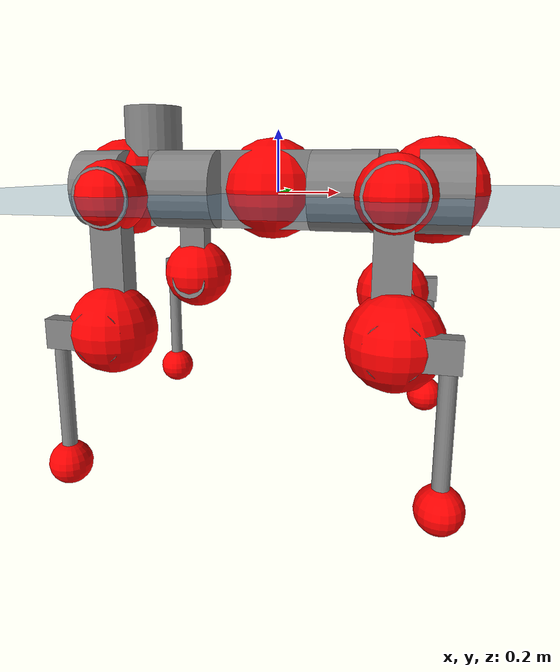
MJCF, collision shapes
<mujoco model="anymal_c">
  <compiler angle="radian" assetdir="assets" balanceinertia="true" inertiafromgeom="false"/>

  <option timestep="0.005" density="1.2" viscosity="2e-05"/>

  <size nkey="1"/>

  <visual>
    <quality shadowsize="8192"/>
    <map shadowclip="0.5"/>
  </visual>

  <default>
    <default class="/">
      <material specular="0" shininess="0.25"/>
      <geom contype="0" conaffinity="0" group="1" solref="-1000 -80"/>
      <site size="0.01 0.005 0.005" group="5"/>
      <general forcelimited="true" forcerange="-80 80" biastype="affine" gainprm="80" biasprm="0 -80 -2"/>
      <default class="anymal_c">
        <joint armature="0.01" damping="0.01" frictionloss="0.1"/>
        <default class="visual">
          <geom type="mesh" group="2"/>
          <default class="visual_zflip"/>
        </default>
        <default class="collision">
          <geom type="cylinder" group="3"/>
          <default class="foot">
            <geom size="0.03 0 0" type="sphere" condim="6" priority="1" friction="0.8 0.02 0.01" solimp="0.015 1 0.03"/>
          </default>
        </default>
      </default>
      <default class="reward_collision_sphere">
        <geom group="5" rgba="1 0 0 1"/>
      </default>
    </default>
  </default>

  <asset>
    <texture type="skybox" colorspace="auto" name="//unnamed_texture_0" builtin="gradient" rgb1="0.95 0.95 0.95" rgb2="0.95 0.95 0.95" width="100" height="600"/>
    <texture type="2d" colorspace="auto" name="texplane" builtin="checker" rgb1="0.345 0.575 0.748" rgb2="0.345 0.575 0.748" markrgb="1 1 1" width="512" height="512"/>
    <texture type="2d" colorspace="linear" name="base" file="base.png"/>
    <texture type="2d" colorspace="linear" name="top_shell" file="top_shell.png"/>
    <texture type="2d" colorspace="linear" name="bottom_shell" file="bottom_shell.png"/>
    <texture type="2d" colorspace="linear" name="remote" file="remote.png"/>
    <texture type="2d" colorspace="linear" name="hatch" file="hatch.png"/>
    <texture type="2d" colorspace="linear" name="handle" file="handle.png"/>
    <texture type="2d" colorspace="linear" name="face" file="face.png"/>
    <texture type="2d" colorspace="linear" name="battery" file="battery.png"/>
    <texture type="2d" colorspace="linear" name="lidar_cage" file="lidar_cage.png"/>
    <texture type="2d" colorspace="linear" name="depth_camera" file="depth_camera.png"/>
    <texture type="2d" colorspace="linear" name="wide_angle_camera" file="wide_angle_camera.png"/>
    <texture type="2d" colorspace="linear" name="lidar" file="lidar.png"/>
    <texture type="2d" colorspace="linear" name="drive" file="drive.png"/>
    <texture type="2d" colorspace="linear" name="hip_l" file="hip_l.png"/>
    <texture type="2d" colorspace="linear" name="shank_l" file="shank_l.png"/>
    <texture type="2d" colorspace="linear" name="foot" file="foot.png"/>
    <texture type="2d" colorspace="linear" name="thigh" file="thigh.png"/>
    <texture type="2d" colorspace="linear" name="shank_r" file="shank_r.png"/>
    <texture type="2d" colorspace="linear" name="hip_r" file="hip_r.png"/>
    <material name="MatPlane" class="/" texture="texplane" texuniform="true" texrepeat="2 2" specular="0.9" shininess="0.5"/>
    <material name="black_plastic" class="/" rgba="0.007 0.007 0.007 1"/>
    <material name="green" class="/" rgba="0.052 0.178 0.033 1"/>
    <material name="red" class="/" rgba="0.178 0.006 0.005 1"/>
    <material name="yellow" class="/" rgba="0.178 0.119 0.006 1"/>
    <material name="lwl" class="/" rgba="0.8 0.8 0.8 1"/>
    <material name="base" class="/" texture="base"/>
    <material name="top_shell" class="/" texture="top_shell"/>
    <material name="bottom_shell" class="/" texture="bottom_shell"/>
    <material name="hip_l" class="/" texture="hip_l"/>
    <material name="thigh" class="/" texture="thigh"/>
    <material name="shank_l" class="/" texture="shank_l"/>
    <material name="foot" class="/" texture="foot"/>
    <material name="hip_r" class="/" texture="hip_r"/>
    <material name="shank" class="/" texture="shank_r"/>
    <material name="hatch" class="/" texture="hatch"/>
    <material name="remote" class="/" texture="remote"/>
    <material name="handle" class="/" texture="handle"/>
    <material name="face" class="/" texture="face"/>
    <material name="depth_camera" class="/" texture="depth_camera"/>
    <material name="wide_angle_camera" class="/" texture="wide_angle_camera"/>
    <material name="battery" class="/" texture="battery"/>
    <material name="lidar_cage" class="/" texture="lidar_cage"/>
    <material name="lidar" class="/" texture="lidar"/>
    <material name="drive" class="/" texture="drive"/>
    <mesh name="base_0" class="/" file="base_0.obj"/>
    <mesh name="base_1" class="/" file="base_1.obj"/>
    <mesh name="base_2" class="/" file="base_2.obj"/>
    <mesh name="base_3" class="/" file="base_3.obj"/>
    <mesh name="base_4" class="/" file="base_4.obj"/>
    <mesh name="base_5" class="/" file="base_5.obj"/>
    <mesh name="top_shell" class="/" file="top_shell.obj"/>
    <mesh name="bottom_shell" class="/" file="bottom_shell.obj"/>
    <mesh name="remote" class="/" file="remote.obj"/>
    <mesh name="handle" class="/" file="handle.obj"/>
    <mesh name="face" class="/" file="face.obj"/>
    <mesh name="wide_angle_camera" class="/" file="wide_angle_camera.obj"/>
    <mesh name="depth_camera" class="/" file="depth_camera.obj"/>
    <mesh name="battery" class="/" file="battery.obj"/>
    <mesh name="lidar_cage" class="/" file="lidar_cage.obj"/>
    <mesh name="lidar" class="/" file="lidar.obj"/>
    <mesh name="drive" class="/" file="drive.obj"/>
    <mesh name="hip_l" class="/" file="hip_l.obj"/>
    <mesh name="thigh" class="/" file="thigh.obj"/>
    <mesh name="shank_l" class="/" file="shank_l.obj"/>
    <mesh name="foot" class="/" file="foot.obj"/>
    <mesh name="hip_r" class="/" file="hip_r.obj"/>
    <mesh name="hatch" class="/" file="hatch.obj"/>
    <mesh name="shank_r" class="/" file="shank_r.obj"/>
  </asset>

  <worldbody>
    <geom name="floor" class="/" size="100 100 0.125" type="plane" group="0" material="MatPlane"/>
    <light name="toplight_shadow" class="/" pos="0 0 5" dir="0.0990148 0.0990148 -0.990148" type="directional" ambient="0.04 0.04 0.04" diffuse="0.55 0.55 0.55" specular="0.12 0.12 0.12"/>
    <light name="toplight_fill" class="/" pos="0 0 5" dir="0.0990148 0.0990148 -0.990148" type="directional" castshadow="false" ambient="0.04 0.04 0.04" diffuse="0.3 0.3 0.3" specular="0.08 0.08 0.08"/>
    <body name="trunk" childclass="anymal_c" pos="-0.0184292 0.00413848 0.010721" quat="0.999964 0.000656297 0.000946725 0.00840727">
      <inertial pos="0.0206135 -0.0103998 0.0762157" quat="0.500183 0.478486 0.523157 0.497167" mass="55.2212" diaginertia="1.1699 5.56745 0.910266"/>
      <joint name="//unnamed_joint_0" type="free" armature="0" damping="0" frictionloss="0"/>
      <geom name="//unnamed_geom_1" class="visual" material="green" mesh="base_0"/>
      <geom name="//unnamed_geom_2" class="visual" material="yellow" mesh="base_1"/>
      <geom name="//unnamed_geom_3" class="visual" material="red" mesh="base_2"/>
      <geom name="//unnamed_geom_4" class="visual" material="black_plastic" mesh="base_3"/>
      <geom name="//unnamed_geom_5" class="visual" material="lwl" mesh="base_4"/>
      <geom name="//unnamed_geom_6" class="visual" material="base" mesh="base_5"/>
      <geom name="trunk_1" class="collision" size="0.401823 0.0969918 0.124704" type="box"/>
      <geom name="trunk_2" class="collision" size="0.124704 0.100456" pos="0.252333 0.111688 0" quat="0.707107 0 0.707107 0"/>
      <geom name="trunk_3" class="collision" size="0.124704 0.100456" pos="-0.252333 0.111688 0" quat="0.707107 0 0.707107 0"/>
      <geom name="trunk_4" class="collision" size="0.124704 0.100456" pos="0.252333 -0.111688 0" quat="0.707107 0 0.707107 0"/>
      <geom name="trunk_5" class="collision" size="0.124704 0.100456" pos="-0.252333 -0.111688 0" quat="0.707107 0 0.707107 0"/>
      <geom name="//unnamed_geom_12" class="visual" material="top_shell" mesh="top_shell"/>
      <geom name="//unnamed_geom_13" class="visual" material="bottom_shell" mesh="bottom_shell"/>
      <geom name="//unnamed_geom_14" class="visual" material="remote" mesh="remote"/>
      <geom name="//unnamed_geom_15" class="visual" material="handle" mesh="handle"/>
      <geom name="//unnamed_geom_16" class="visual" pos="0.480883 0 0" quat="1 0 0 0" material="face" mesh="face"/>
      <geom name="trunk_6" class="collision" size="0.0762079 0.0969918 0.124704" pos="0.544692 0 0" type="box"/>
      <geom name="//unnamed_geom_18" class="collision" size="0.124704 0.0762079" pos="0.544692 0.111688 0" quat="0.707107 0 0.707107 0"/>
      <geom name="//unnamed_geom_19" class="collision" size="0.124704 0.0762079" pos="0.544692 -0.111688 0" quat="0.707107 0 0.707107 0"/>
      <geom name="//unnamed_geom_20" class="visual" pos="0.535595 0 -0.0427432" quat="0.965926 0 0.258819 0" material="depth_camera" mesh="depth_camera"/>
      <geom name="//unnamed_geom_21" class="visual" pos="0.595158 0 0.0209744" material="wide_angle_camera" mesh="wide_angle_camera"/>
      <geom name="//unnamed_geom_22" class="visual_zflip" pos="-0.480883 0 0" quat="0 0 0 1" material="face" mesh="face"/>
      <geom name="trunk_7" class="collision" size="0.0762079 0.0969918 0.124704" pos="-0.544692 0 0" quat="0 0 0 1" type="box"/>
      <geom name="//unnamed_geom_24" class="collision" size="0.124704 0.0762079" pos="-0.544692 -0.111688 0" quat="0 -0.707107 0 0.707107"/>
      <geom name="//unnamed_geom_25" class="collision" size="0.124704 0.0762079" pos="-0.544692 0.111688 0" quat="0 -0.707107 0 0.707107"/>
      <geom name="//unnamed_geom_26" class="visual" pos="-0.535595 0 -0.0427432" quat="0 -0.258819 0 0.965926" material="depth_camera" mesh="depth_camera"/>
      <geom name="//unnamed_geom_27" class="visual_zflip" pos="-0.595158 0 0.0209744" quat="0 0 0 1" material="wide_angle_camera" mesh="wide_angle_camera"/>
      <geom name="//unnamed_geom_28" class="visual" material="battery" mesh="battery"/>
      <geom name="//unnamed_geom_29" class="visual" pos="0 0.127718 0.0388707" quat="0.683013 -0.183013 0.183013 0.683013" material="depth_camera" mesh="depth_camera"/>
      <geom name="//unnamed_geom_30" class="visual" pos="0 -0.127718 0.0388707" quat="0.683013 0.183013 0.183013 -0.683013" material="depth_camera" mesh="depth_camera"/>
      <geom name="//unnamed_geom_31" class="visual" pos="-0.422296 0 0.102981" quat="1 0 0 0" material="lidar_cage" mesh="lidar_cage"/>
      <geom name="trunk_8" class="collision" size="0.0969918 0.0831359" pos="-0.422296 0 0.187047"/>
      <geom name="//unnamed_geom_33" class="visual" pos="-0.422296 0.000171053 0.199236" quat="0.707107 0 0 -0.707107" material="lidar" mesh="lidar"/>
      <geom name="//unnamed_geom_34" class="visual" pos="0.34793 0.165867 3.3542e-09" quat="0.258819 0.965926 0 0" material="drive" mesh="drive"/>
      <geom name="//unnamed_geom_35" class="visual" pos="0.34793 -0.165867 -3.3542e-09" quat="0.258819 -0.965926 0 0" material="drive" mesh="drive"/>
      <geom name="//unnamed_geom_36" class="visual" pos="-0.34793 0.165867 -3.3542e-09" quat="0 0 0.965926 -0.258819" material="drive" mesh="drive"/>
      <geom name="//unnamed_geom_37" class="visual" pos="-0.34793 -0.165867 3.3542e-09" quat="0 0 -0.965926 -0.258819" material="drive" mesh="drive"/>
      <geom name="//unnamed_geom_38" class="visual" pos="0.134578 0 0.10228" quat="1 0 0 0" material="hatch" mesh="hatch"/>
      <geom name="//unnamed_geom_39" class="reward_collision_sphere" size="0.166272"/>
      <geom name="//unnamed_geom_40" class="reward_collision_sphere" size="0.166272" pos="0.522069 0 0"/>
      <geom name="//unnamed_geom_41" class="reward_collision_sphere" size="0.166272" pos="-0.522069 0 0"/>
      <site name="imu" pos="0.310691 -0.0448994 -0.0177842" size="0.013856"/>
      <camera name="track" pos="0 -3.19108 0" quat="0.707107 0.707107 0 0" mode="trackcom"/>
      <camera name="ego_camera" pos="0.522069 0 -0.0560439" quat="-0.5 -0.5 0.5 0.5"/>
      <body name="LF_HIP" pos="0.34745 0.17397 -0.00994307" quat="0.254846 0.966976 -0.00324516 -0.000241402">
        <inertial pos="0.0587518 -0.0104391 -0.00613749" quat="-0.118368 0.725583 -0.129257 0.66544" mass="7.65479" diaginertia="0.00863239 0.039857 0.0175692"/>
        <joint name="LF_HAA" pos="0 0 0" axis="0.995866 0.0841125 0.034285" stiffness="0.0470747" range="-1.07864 0.590646" armature="0.0146271" damping="0" frictionloss="0.130599"/>
        <geom name="//unnamed_geom_42" class="visual" pos="0 0.000197312 -3.24084e-05" quat="0.258819 -0.965926 0 0" material="hip_l" mesh="hip_l"/>
        <geom name="//unnamed_geom_43" class="visual" pos="0.0694932 -0.0898692 -0.0504478" quat="0.183013 -0.683013 0.683013 0.183013" material="drive" mesh="drive"/>
        <geom name="//unnamed_geom_44" class="collision" size="0.0692799 0.0969918" pos="0.0694932 -0.0190824 -0.00967458" quat="-0.353553 -0.612372 0.612372 -0.353553"/>
        <body name="LF_THIGH" pos="0.058434 -0.120282 -0.0705368" quat="0.175984 -0.68197 0.68613 0.18213">
          <inertial pos="0.0220144 0.0128772 -0.327446" quat="0.993068 -0.00458799 -0.0808253 0.0852153" mass="10.0593" diaginertia="0.0644146 0.343853 0.0202802"/>
          <joint name="LF_HFE" pos="0 0 0" axis="0.999012 0.00664692 0.0439317" stiffness="0.0935898" range="-3.34826 3.17097" armature="0.0211263" damping="0" frictionloss="0.201012"/>
          <geom name="//unnamed_geom_45" class="visual" pos="-0.00866254 -1.36501e-05 0" quat="0.707107 0 0 -0.707107" material="thigh" mesh="thigh"/>
          <geom name="//unnamed_geom_46" class="collision" size="0.0900638 0.0554239" pos="0.0464061 0 0" quat="0.5 0.5 -0.5 -0.5"/>
          <geom name="//unnamed_geom_47" class="collision" size="0.0519599 0.0415679 0.195804" pos="0.0348046 0 -0.197995" quat="0.707107 0 0 -0.707107" type="box"/>
          <geom name="//unnamed_geom_48" class="visual" pos="0.116363 0 -0.399313" quat="1 0 0 0" material="drive" mesh="drive"/>
          <geom name="//unnamed_geom_49" class="collision" size="0.0692799 0.0969918" pos="0.0351526 0 -0.399313" quat="0.707107 0 0.707107 0"/>
          <geom name="//unnamed_geom_50" class="reward_collision_sphere" size="0.110848" pos="0.0290038 0 0"/>
          <body name="LF_SHANK" pos="0.111206 0.016925 -0.397379" quat="0.99998 -0.0026939 -0.00422229 0.00382717">
            <inertial pos="0.0214934 -0.0959427 -0.126194" quat="0.996987 -0.0771841 -0.00742248 0.0019825" mass="1.4755" diaginertia="0.0188371 0.0613782 0.00414444"/>
            <joint name="LF_KFE" pos="0 0 0" axis="0.998975 0.0423651 -0.015957" range="-2.80416 3.06346" armature="0.00661734" damping="0.092241" frictionloss="0.0597445"/>
            <geom name="//unnamed_geom_51" class="visual" pos="-0.00282466 -0.0150613 0" quat="0.707107 0 0 -0.707107" material="shank_l" mesh="shank_l"/>
            <geom name="LF_kfe_act" class="collision" size="0.0831359 0.027712" pos="0.0232031 0 0" quat="0.5 0.5 -0.5 -0.5"/>
            <geom name="//unnamed_geom_53" class="collision" size="0.0796705 0.0467639 0.0263264" pos="0.0232031 -0.0917421 0" quat="0.5 0.5 -0.5 -0.5" type="box"/>
            <geom name="//unnamed_geom_54" class="visual" pos="0.0151407 -0.145182 -0.473529" quat="0.382683 0 0 -0.92388" material="foot" mesh="foot"/>
            <geom name="LF_calf" class="collision" size="0.024248 0.195718" pos="0.01514 -0.140328 -0.236764" quat="0.707107 0 0 -0.707107"/>
            <geom name="LF_foot" class="foot" size="0.034492" pos="0.01514 -0.140328 -0.442004" quat="0.707107 0 0 -0.707107"/>
            <geom name="//unnamed_geom_57" class="reward_collision_sphere" size="0.13856" pos="-0.0580077 0 0"/>
            <geom name="//unnamed_geom_58" class="reward_collision_sphere" size="0.0692799" pos="0.01514 -0.140328 -0.442004"/>
            <site name="LF_foot" class="foot" pos="0.01514 -0.140328 -0.442004" quat="0.707107 0 0 -0.707107" size="0.013856"/>
          </body>
        </body>
      </body>
      <body name="RF_HIP" pos="0.342533 -0.174075 0.0170816" quat="0.25998 -0.965587 -0.0061872 0.00358398">
        <inertial pos="0.0545526 0.0405185 -0.010533" quat="0.112278 0.714413 0.0679289 0.687308" mass="7.39084" diaginertia="0.0166505 0.0579723 0.0236847"/>
        <joint name="RF_HAA" pos="0 0 0" axis="0.998347 0.0374729 0.0435697" stiffness="0.0375352" range="-0.66778 0.705208" armature="0.00857498" damping="0" frictionloss="0.246485"/>
        <geom name="//unnamed_geom_59" class="visual" pos="0 -0.000197311 -3.24083e-05" quat="0.258819 0.965926 0 0" material="hip_r" mesh="hip_r"/>
        <geom name="//unnamed_geom_60" class="visual" pos="0.0694932 0.0898692 -0.0504478" quat="0.183013 0.683013 0.683013 -0.183013" material="drive" mesh="drive"/>
        <geom name="//unnamed_geom_61" class="collision" size="0.0692799 0.0969918" pos="0.0694932 0.0190824 -0.00967458" quat="-0.353553 0.612372 0.612372 0.353553"/>
        <body name="RF_THIGH" pos="0.0682723 0.134023 -0.0590921" quat="0.181675 0.682752 0.683454 -0.183669">
          <inertial pos="0.0239719 0.0144365 -0.339581" quat="0.98775 0.0432218 -0.0732235 0.130843" mass="7.82001" diaginertia="0.0763715 0.389223 0.0207454"/>
          <joint name="RF_HFE" pos="0 0 0" axis="0.999965 0.00129807 -0.00831033" stiffness="0.0600647" range="-3.0342 2.84088" armature="0.0140042" damping="0.0415606" frictionloss="0.0671247"/>
          <geom name="//unnamed_geom_62" class="visual" pos="-0.00866254 -1.36501e-05 0" quat="0.707107 0 0 -0.707107" material="thigh" mesh="thigh"/>
          <geom name="//unnamed_geom_63" class="collision" size="0.0900638 0.0554239" pos="0.0464061 0 0" quat="0.5 0.5 0.5 0.5"/>
          <geom name="//unnamed_geom_64" class="collision" size="0.0519599 0.0415679 0.195804" pos="0.0348046 0 -0.197995" quat="0.707107 0 0 0.707107" type="box"/>
          <geom name="//unnamed_geom_65" class="visual" pos="0.116363 0 -0.399313" quat="1 0 0 0" material="drive" mesh="drive"/>
          <geom name="//unnamed_geom_66" class="collision" size="0.0692799 0.0969918" pos="0.0351526 0 -0.399313" quat="0.707107 0 0.707107 0"/>
          <geom name="//unnamed_geom_67" class="reward_collision_sphere" size="0.110848" pos="0.0290038 0 0"/>
          <body name="RF_SHANK" pos="0.11621 0.0148616 -0.390602" quat="1 6.48345e-05 4.89926e-05 2.09725e-05">
            <inertial pos="0.00812453 0.0937829 -0.115574" quat="0.99191 0.0891183 0.0682847 0.0592365" mass="1.62805" diaginertia="0.0214577 0.0943721 0.00706481"/>
            <joint name="RF_KFE" pos="0 0 0" axis="0.9962 0.0213346 0.0844388" stiffness="0.0791144" range="-3.21553 2.86698" armature="0.0202774" damping="0" frictionloss="0.206203"/>
            <geom name="//unnamed_geom_68" class="visual" pos="-0.00282465 0.0150612 0" quat="0.707107 0 0 0.707107" material="shank" mesh="shank_r"/>
            <geom name="RF_kfe_act" class="collision" size="0.0831359 0.027712" pos="0.0232031 0 0" quat="0.5 0.5 0.5 0.5"/>
            <geom name="//unnamed_geom_70" class="collision" size="0.0796705 0.0467639 0.0263264" pos="0.0232031 0.0917421 0" quat="0.5 0.5 0.5 0.5" type="box"/>
            <geom name="//unnamed_geom_71" class="visual" pos="0.0151393 0.145182 -0.473529" quat="0.382683 0 0 0.92388" material="foot" mesh="foot"/>
            <geom name="RF_calf" class="collision" size="0.024248 0.195718" pos="0.01514 0.140328 -0.236764" quat="0.707107 0 0 0.707107"/>
            <geom name="RF_foot" class="foot" size="0.0543494" pos="0.01514 0.140328 -0.442004" quat="0.707107 0 0 0.707107"/>
            <geom name="//unnamed_geom_74" class="reward_collision_sphere" size="0.13856" pos="-0.0580077 0 0"/>
            <geom name="//unnamed_geom_75" class="reward_collision_sphere" size="0.0692799" pos="0.01514 0.140328 -0.442004"/>
            <site name="RF_foot" class="foot" pos="0.01514 0.140328 -0.442004" quat="0.707107 0 0 0.707107" size="0.013856"/>
          </body>
        </body>
      </body>
      <body name="LH_HIP" pos="-0.345704 0.164002 0.0141275" quat="0.000487927 -0.000322506 0.966252 -0.257597">
        <inertial pos="0.0564337 0.00692451 0.00242268" quat="0.178972 0.688461 0.0458498 0.701348" mass="5.30448" diaginertia="0.0106157 0.0482073 0.0128638"/>
        <joint name="LH_HAA" pos="0 0 0" axis="0.999914 -0.00142136 0.0129998" range="-0.380043 0.964442" armature="0.0235723" damping="0.0434097" frictionloss="0.0256606"/>
        <geom name="//unnamed_geom_76" class="visual" pos="0 -0.000197311 -3.24083e-05" quat="-0.258819 -0.965926 0 0" material="hip_r" mesh="hip_r"/>
        <geom name="//unnamed_geom_77" class="visual" pos="0.0694932 0.0898692 -0.0504478" quat="0.183013 0.683013 0.683013 -0.183013" material="drive" mesh="drive"/>
        <geom name="//unnamed_geom_78" class="collision" size="0.0692799 0.0969918" pos="0.0694932 0.0190824 -0.00967458" quat="-0.353553 0.612372 0.612372 0.353553"/>
        <body name="LH_THIGH" pos="0.066959 0.131717 -0.0749644" quat="0.182994 0.681541 0.684836 -0.181701">
          <inertial pos="0.035459 0.000979607 -0.350357" quat="0.986605 -0.0150145 -0.118819 0.110756" mass="5.74835" diaginertia="0.0548261 0.257552 0.0170644"/>
          <joint name="LH_HFE" pos="0 0 0" axis="0.998091 -0.0553361 0.0274231" range="-3.21852 3.05738" armature="0.00464633" damping="0.0747198" frictionloss="0.138112"/>
          <geom name="//unnamed_geom_79" class="visual" pos="-0.00866254 -1.36501e-05 0" quat="0.707107 0 0 -0.707107" material="thigh" mesh="thigh"/>
          <geom name="//unnamed_geom_80" class="collision" size="0.0900638 0.0554239" pos="0.0464061 0 0" quat="0.5 0.5 -0.5 -0.5"/>
          <geom name="//unnamed_geom_81" class="collision" size="0.0519599 0.0415679 0.195804" pos="0.0348046 0 -0.197995" quat="0.707107 0 0 -0.707107" type="box"/>
          <geom name="//unnamed_geom_82" class="visual" pos="0.116363 0 -0.399313" quat="1 0 0 0" material="drive" mesh="drive"/>
          <geom name="//unnamed_geom_83" class="collision" size="0.0692799 0.0969918" pos="0.0351526 0 -0.399313" quat="0.707107 0 0.707107 0"/>
          <geom name="//unnamed_geom_84" class="reward_collision_sphere" size="0.110848" pos="0.0290038 0 0"/>
          <body name="LH_SHANK" pos="0.114563 -0.0002194 -0.382275" quat="0.999994 -0.000227537 0.000910363 0.0032334">
            <inertial pos="0.0153898 0.0797393 -0.117125" quat="0.985335 0.163758 0.0248238 0.0410213" mass="1.38598" diaginertia="0.0217794 0.0809533 0.00659834"/>
            <joint name="LH_KFE" pos="0 0 0" axis="0.999533 0.0015324 -0.0305316" stiffness="0.0925744" range="-3.12838 2.93205" armature="0.00626466" damping="0.0683075" frictionloss="0.0159435"/>
            <geom name="//unnamed_geom_85" class="visual" pos="-0.00282465 0.0150612 0" quat="-0.707107 0 0 -0.707107" material="shank" mesh="shank_r"/>
            <geom name="LH_kfe_act" class="collision" size="0.0831359 0.027712" pos="0.0232031 0 0" quat="0.5 0.5 -0.5 -0.5"/>
            <geom name="//unnamed_geom_87" class="collision" size="0.0796705 0.0467639 0.0263264" pos="0.0232031 0.0917421 0" quat="0.5 0.5 -0.5 -0.5" type="box"/>
            <geom name="//unnamed_geom_88" class="visual" pos="0.0151393 0.145182 -0.473529" quat="-0.382683 0 0 -0.92388" material="foot" mesh="foot"/>
            <geom name="LH_calf" class="collision" size="0.024248 0.195718" pos="0.01514 0.140328 -0.236764" quat="0.707107 0 0 -0.707107"/>
            <geom name="LH_foot" class="foot" size="0.0588417" pos="0.01514 0.140328 -0.442004" quat="0.707107 0 0 -0.707107"/>
            <geom name="//unnamed_geom_91" class="reward_collision_sphere" size="0.13856" pos="-0.0580077 0 0"/>
            <geom name="//unnamed_geom_92" class="reward_collision_sphere" size="0.0692799" pos="0.01514 0.140328 -0.442004"/>
            <site name="LH_foot" class="foot" pos="0.01514 0.140328 -0.442004" quat="0.707107 0 0 -0.707107" size="0.013856"/>
          </body>
        </body>
      </body>
      <body name="RH_HIP" pos="-0.35689 -0.154695 0.00605886" quat="0.00124838 -0.004728 -0.964018 -0.265791">
        <inertial pos="0.047949 -0.0384865 0.00605985" quat="-0.109721 0.668147 -0.169221 0.716174" mass="7.25524" diaginertia="0.0125203 0.0521061 0.0184913"/>
        <joint name="RH_HAA" pos="0 0 0" axis="0.995882 -0.085658 -0.0296984" range="-0.902072 0.373882" armature="0.0218565" damping="0.0390243" frictionloss="0.0938822"/>
        <geom name="//unnamed_geom_93" class="visual" pos="0 0.000197312 -3.24084e-05" quat="-0.258819 0.965926 0 0" material="hip_l" mesh="hip_l"/>
        <geom name="//unnamed_geom_94" class="visual" pos="0.0694932 -0.0898692 -0.0504478" quat="-0.183013 0.683013 -0.683013 -0.183013" material="drive" mesh="drive"/>
        <geom name="//unnamed_geom_95" class="collision" size="0.0692799 0.0969918" pos="0.0694932 -0.0190824 -0.00967458" quat="0.353553 0.612372 -0.612372 0.353553"/>
        <body name="RH_THIGH" pos="0.0771766 -0.111622 -0.0408506" quat="-0.183116 0.683039 -0.682999 -0.182864">
          <inertial pos="0.0410602 -0.001797 -0.344294" quat="0.992627 0.00278201 -0.0789495 0.0919233" mass="9.67139" diaginertia="0.0676923 0.256363 0.0219755"/>
          <joint name="RH_HFE" pos="0 0 0" axis="0.999459 0.0138189 -0.0298352" range="-3.15406 2.82523" armature="0.0171078" damping="0.00153209" frictionloss="0.0934527"/>
          <geom name="//unnamed_geom_96" class="visual" pos="-0.00866254 -1.36501e-05 0" quat="0.707107 0 0 -0.707107" material="thigh" mesh="thigh"/>
          <geom name="//unnamed_geom_97" class="collision" size="0.0900638 0.0554239" pos="0.0464061 0 0" quat="0.5 0.5 0.5 0.5"/>
          <geom name="//unnamed_geom_98" class="collision" size="0.0519599 0.0415679 0.195804" pos="0.0348046 0 -0.197995" quat="0.707107 0 0 0.707107" type="box"/>
          <geom name="//unnamed_geom_99" class="visual" pos="0.116363 0 -0.399313" quat="1 0 0 0" material="drive" mesh="drive"/>
          <geom name="//unnamed_geom_100" class="collision" size="0.0692799 0.0969918" pos="0.0351526 0 -0.399313" quat="0.707107 0 0.707107 0"/>
          <geom name="//unnamed_geom_101" class="reward_collision_sphere" size="0.110848" pos="0.0290038 0 0"/>
          <body name="RH_SHANK" pos="0.110671 -0.00306898 -0.410196" quat="0.999998 -0.000760291 -9.21223e-05 -0.00191452">
            <inertial pos="0.0202491 -0.102963 -0.110401" quat="0.997896 -0.0583944 0.00455893 -0.0277889" mass="1.67034" diaginertia="0.0191153 0.0933783 0.00497007"/>
            <joint name="RH_KFE" pos="0 0 0" axis="0.996585 -0.0608036 -0.0558696" stiffness="0.00999062" range="-2.95781 3.18324" armature="0.0190931" damping="0" frictionloss="0.192521"/>
            <geom name="//unnamed_geom_102" class="visual" pos="-0.00282466 -0.0150613 0" quat="0.707107 0 0 -0.707107" material="shank_l" mesh="shank_l"/>
            <geom name="RH_kfe_act" class="collision" size="0.0831359 0.027712" pos="0.0232031 0 0" quat="0.5 0.5 0.5 0.5"/>
            <geom name="//unnamed_geom_104" class="collision" size="0.0796705 0.0467639 0.0263264" pos="0.0232031 -0.0917421 0" quat="0.5 0.5 0.5 0.5" type="box"/>
            <geom name="//unnamed_geom_105" class="visual" pos="0.0151407 -0.145182 -0.473529" quat="0.382683 0 0 -0.92388" material="foot" mesh="foot"/>
            <geom name="RH_calf" class="collision" size="0.024248 0.195718" pos="0.01514 -0.140328 -0.236764" quat="0.707107 0 0 0.707107"/>
            <geom name="RH_foot" class="foot" size="0.0659248" pos="0.01514 -0.140328 -0.442004" quat="0.707107 0 0 0.707107"/>
            <geom name="//unnamed_geom_108" class="reward_collision_sphere" size="0.13856" pos="-0.0580077 0 0"/>
            <geom name="//unnamed_geom_109" class="reward_collision_sphere" size="0.0692799" pos="0.01514 -0.140328 -0.442004"/>
            <site name="RH_foot" class="foot" pos="0.01514 -0.140328 -0.442004" quat="0.707107 0 0 0.707107" size="0.013856"/>
          </body>
        </body>
      </body>
    </body>
  </worldbody>

  <contact>
    <pair class="/" geom1="floor" geom2="LF_foot" name="//unnamed_contact_0"/>
    <pair class="/" geom1="floor" geom2="RF_foot" name="//unnamed_contact_1"/>
    <pair class="/" geom1="floor" geom2="LH_foot" name="//unnamed_contact_2"/>
    <pair class="/" geom1="floor" geom2="RH_foot" name="//unnamed_contact_3"/>
  </contact>

  <actuator>
    <general name="LF_HAA" class="/" joint="LF_HAA" forcerange="-113.075 113.075" gainprm="77.738" biasprm="0 -77.738 -3.70086"/>
    <general name="LF_HFE" class="/" joint="LF_HFE" forcerange="-158.499 158.499" gainprm="77.738" biasprm="0 -77.738 -3.70086"/>
    <general name="LF_KFE" class="/" joint="LF_KFE" forcerange="-132.966 132.966" gainprm="77.738" biasprm="0 -77.738 -3.70086"/>
    <general name="RF_HAA" class="/" joint="RF_HAA" forcerange="-125.106 125.106" gainprm="77.738" biasprm="0 -77.738 -3.70086"/>
    <general name="RF_HFE" class="/" joint="RF_HFE" forcerange="-63.6686 63.6686" gainprm="77.738" biasprm="0 -77.738 -3.70086"/>
    <general name="RF_KFE" class="/" joint="RF_KFE" forcerange="-119.061 119.061" gainprm="77.738" biasprm="0 -77.738 -3.70086"/>
    <general name="LH_HAA" class="/" joint="LH_HAA" forcerange="-38.4674 38.4674" gainprm="77.738" biasprm="0 -77.738 -3.70086"/>
    <general name="LH_HFE" class="/" joint="LH_HFE" forcerange="-156.849 156.849" gainprm="77.738" biasprm="0 -77.738 -3.70086"/>
    <general name="LH_KFE" class="/" joint="LH_KFE" forcerange="-183.188 183.188" gainprm="77.738" biasprm="0 -77.738 -3.70086"/>
    <general name="RH_HAA" class="/" joint="RH_HAA" forcerange="-165.553 165.553" gainprm="77.738" biasprm="0 -77.738 -3.70086"/>
    <general name="RH_HFE" class="/" joint="RH_HFE" forcerange="-40.3003 40.3003" gainprm="77.738" biasprm="0 -77.738 -3.70086"/>
    <general name="RH_KFE" class="/" joint="RH_KFE" forcerange="-88.1783 88.1783" gainprm="77.738" biasprm="0 -77.738 -3.70086"/>
  </actuator>

  <sensor>
    <gyro site="imu" name="imu_angular_velocity"/>
    <velocimeter site="imu" name="imu_linear_velocity"/>
    <framelinvel objtype="site" objname="LF_foot" name="LF_foot_global_linear_velocity"/>
    <framelinvel objtype="site" objname="RF_foot" name="RF_foot_global_linear_velocity"/>
    <framelinvel objtype="site" objname="LH_foot" name="LH_foot_global_linear_velocity"/>
    <framelinvel objtype="site" objname="RH_foot" name="RH_foot_global_linear_velocity"/>
  </sensor>

  <keyframe>
    <key name="home" qpos="0 0 0.55 1 0 0 0 0 0.4 -0.8 0 -0.4 0.8 0 -0.4 0.8 0 0.4 -0.8"/>
  </keyframe>
</mujoco>
